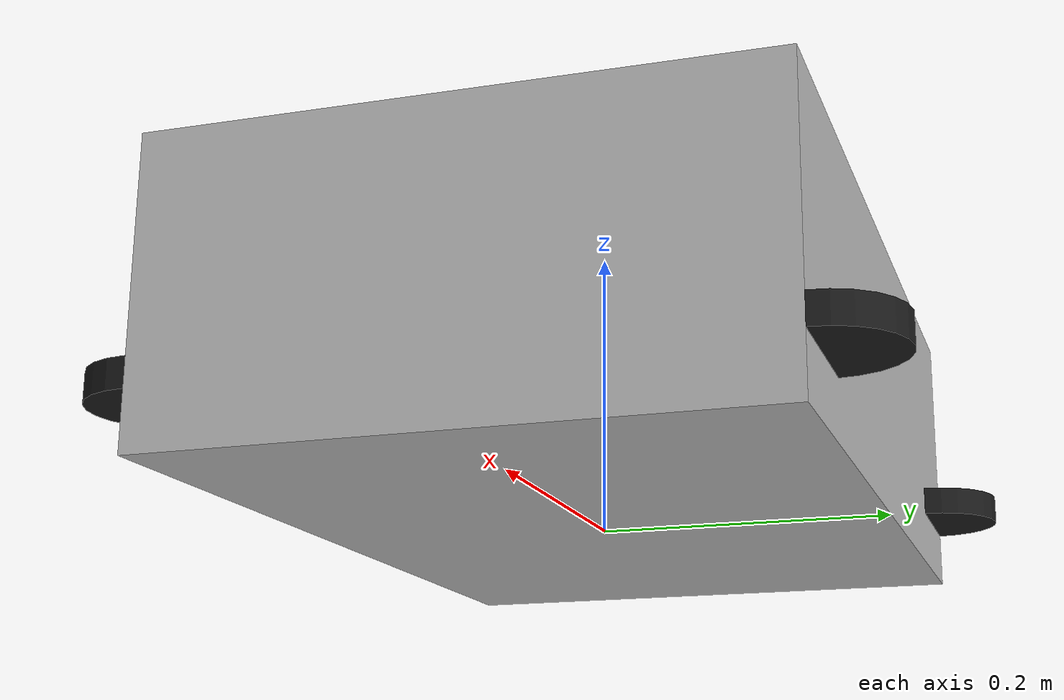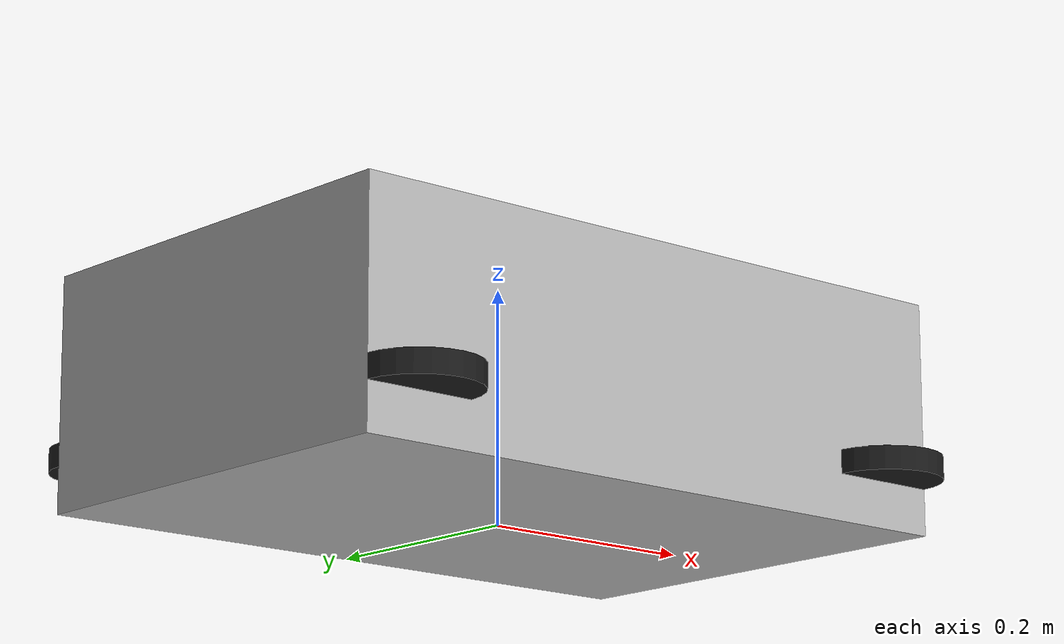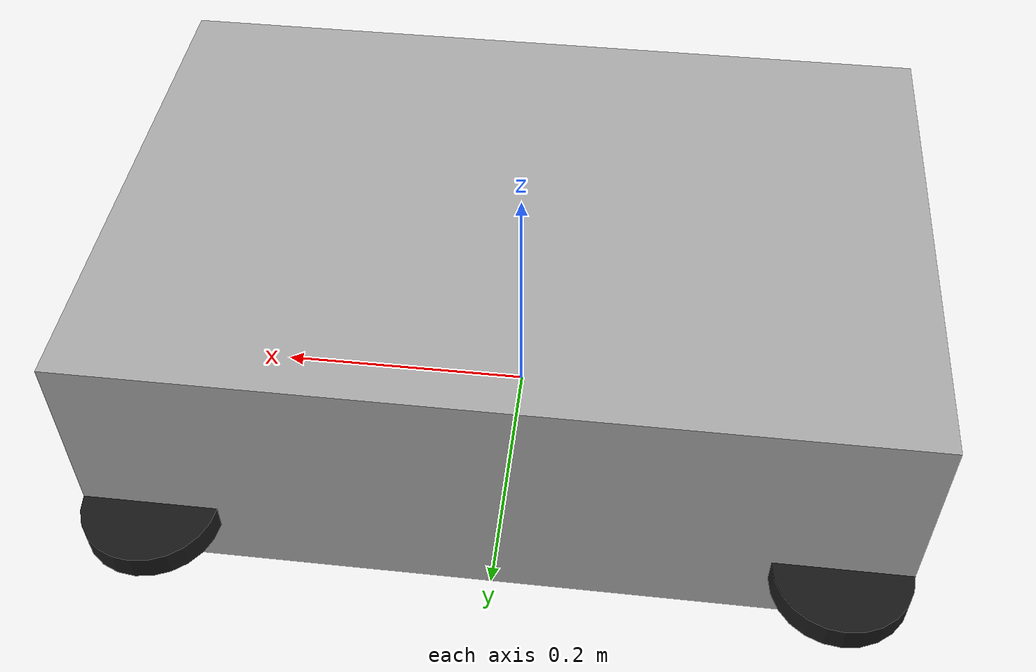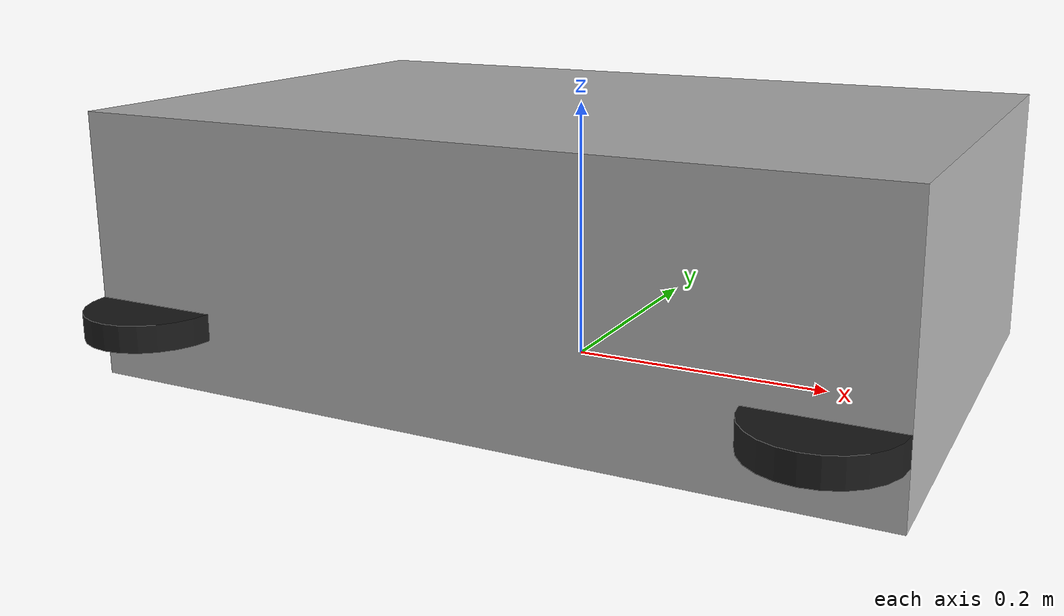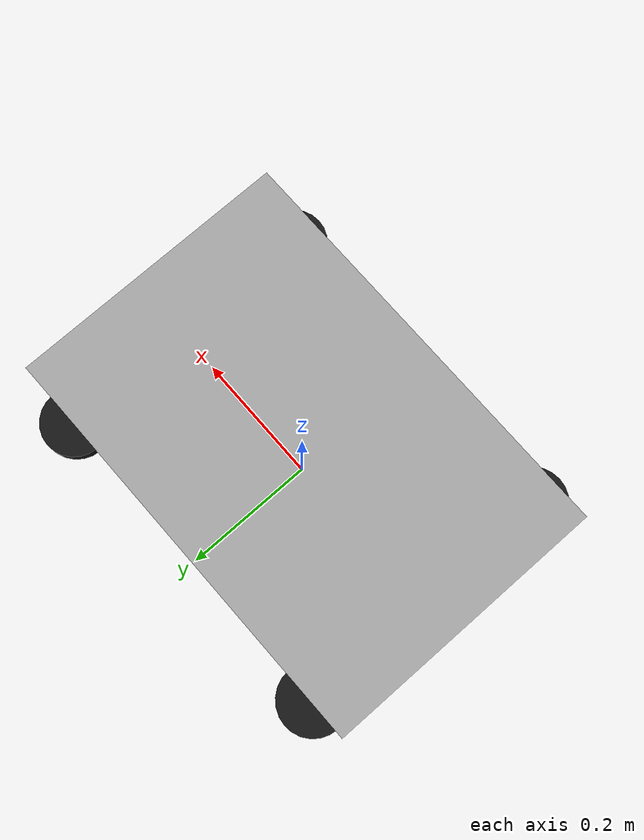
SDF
<?xml version="1.0" ?>
<sdf version="1.7">
  <model name="four_wheel_robot">
    <!-- Base Link -->
    <link name="base_link">
      <pose>0 0 0.1 0 0 0</pose>
      <inertial>
        <mass>2.0</mass>
        <inertia>
          <ixx>0.1</ixx>
          <iyy>0.1</iyy>
          <izz>0.1</izz>
          <ixy>0</ixy>
          <ixz>0</ixz>
          <iyz>0</iyz>
        </inertia>
      </inertial>
      <visual name="base_visual">
        <geometry>
          <box>
            <size>0.6 0.4 0.2</size>
          </box>
        </geometry>
        <material>
          <ambient>0.3 0.3 0.3 1</ambient>
          <diffuse>0.7 0.7 0.7 1</diffuse>
        </material>
      </visual>
      <collision name="base_collision">
        <geometry>
          <box>
            <size>0.6 0.4 0.2</size>
          </box>
        </geometry>
      </collision>
    </link>

    <!-- Wheels -->
    <!-- Front Left -->
    <link name="wheel_fl">
      <pose>0.25 0.2 0.05 0 0 0</pose>
      <inertial>
        <mass>0.2</mass>
        <inertia>
          <ixx>0.001</ixx>
          <iyy>0.001</iyy>
          <izz>0.001</izz>
          <ixy>0</ixy>
          <ixz>0</ixz>
          <iyz>0</iyz>
        </inertia>
      </inertial>
      <visual name="visual">
        <geometry>
          <cylinder>
            <radius>0.05</radius>
            <length>0.02</length>
          </cylinder>
        </geometry>
        <material>
          <ambient>0 0 0 1</ambient>
          <diffuse>0.1 0.1 0.1 1</diffuse>
        </material>
      </visual>
      <collision name="collision">
        <geometry>
          <cylinder>
            <radius>0.05</radius>
            <length>0.02</length>
          </cylinder>
        </geometry>
      </collision>
    </link>

    <!-- Front Right -->
    <link name="wheel_fr">
      <pose>0.25 -0.2 0.05 0 0 0</pose>
      <inertial>
        <mass>0.2</mass>
        <inertia>
          <ixx>0.001</ixx>
          <iyy>0.001</iyy>
          <izz>0.001</izz>
          <ixy>0</ixy>
          <ixz>0</ixz>
          <iyz>0</iyz>
        </inertia>
      </inertial>
      <visual name="visual">
        <geometry>
          <cylinder>
            <radius>0.05</radius>
            <length>0.02</length>
          </cylinder>
        </geometry>
        <material>
          <ambient>0 0 0 1</ambient>
          <diffuse>0.1 0.1 0.1 1</diffuse>
        </material>
      </visual>
      <collision name="collision">
        <geometry>
          <cylinder>
            <radius>0.05</radius>
            <length>0.02</length>
          </cylinder>
        </geometry>
      </collision>
    </link>

    <!-- Back Left -->
    <link name="wheel_bl">
      <pose>-0.25 0.2 0.05 0 0 0</pose>
      <inertial>
        <mass>0.2</mass>
        <inertia>
          <ixx>0.001</ixx>
          <iyy>0.001</iyy>
          <izz>0.001</izz>
          <ixy>0</ixy>
          <ixz>0</ixz>
          <iyz>0</iyz>
        </inertia>
      </inertial>
      <visual name="visual">
        <geometry>
          <cylinder>
            <radius>0.05</radius>
            <length>0.02</length>
          </cylinder>
        </geometry>
        <material>
          <ambient>0 0 0 1</ambient>
          <diffuse>0.1 0.1 0.1 1</diffuse>
        </material>
      </visual>
      <collision name="collision">
        <geometry>
          <cylinder>
            <radius>0.05</radius>
            <length>0.02</length>
          </cylinder>
        </geometry>
      </collision>
    </link>

    <!-- Back Right -->
    <link name="wheel_br">
      <pose>-0.25 -0.2 0.05 0 0 0</pose>
      <inertial>
        <mass>0.2</mass>
        <inertia>
          <ixx>0.001</ixx>
          <iyy>0.001</iyy>
          <izz>0.001</izz>
          <ixy>0</ixy>
          <ixz>0</ixz>
          <iyz>0</iyz>
        </inertia>
      </inertial>
      <visual name="visual">
        <geometry>
          <cylinder>
            <radius>0.05</radius>
            <length>0.02</length>
          </cylinder>
        </geometry>
        <material>
          <ambient>0 0 0 1</ambient>
          <diffuse>0.1 0.1 0.1 1</diffuse>
        </material>
      </visual>
      <collision name="collision">
        <geometry>
          <cylinder>
            <radius>0.05</radius>
            <length>0.02</length>
          </cylinder>
        </geometry>
      </collision>
    </link>

    <!-- Joints -->
    <joint name="joint_wheel_fl" type="revolute">
      <parent>base_link</parent>
      <child>wheel_fl</child>
      <axis>
        <xyz>0 1 0</xyz>
        <limit>
          <lower>0</lower>
          <upper>0</upper>
          <effort>0</effort>
          <velocity>10</velocity>
        </limit>
      </axis>
    </joint>

    <joint name="joint_wheel_fr" type="revolute">
      <parent>base_link</parent>
      <child>wheel_fr</child>
      <axis>
        <xyz>0 1 0</xyz>
        <limit>
          <lower>0</lower>
          <upper>0</upper>
          <effort>0</effort>
          <velocity>10</velocity>
        </limit>
      </axis>
    </joint>

    <joint name="joint_wheel_bl" type="revolute">
      <parent>base_link</parent>
      <child>wheel_bl</child>
      <axis>
        <xyz>0 1 0</xyz>
        <limit>
          <lower>0</lower>
          <upper>0</upper>
          <effort>0</effort>
          <velocity>10</velocity>
        </limit>
      </axis>
    </joint>

    <joint name="joint_wheel_br" type="revolute">
      <parent>base_link</parent>
      <child>wheel_br</child>
      <axis>
        <xyz>0 1 0</xyz>
        <limit>
          <lower>0</lower>
          <upper>0</upper>
          <effort>0</effort>
          <velocity>10</velocity>
        </limit>
      </axis>
    </joint>

    <!-- Optional: make robot dynamic -->
    <static>0</static>
  </model>
</sdf>
